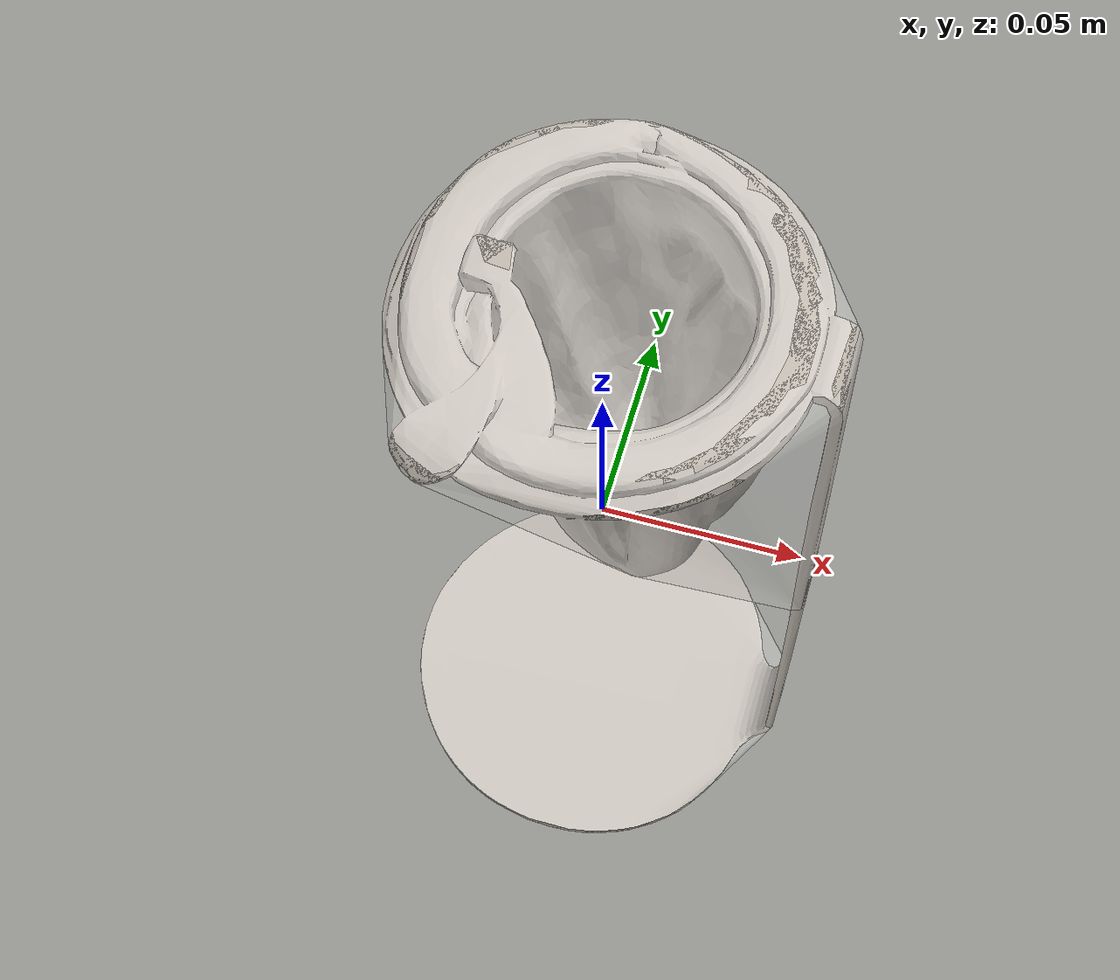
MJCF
<mujoco model="coador">
  <asset>
    <mesh file="visual/modelo.obj" name="coador_vis"/>
    <texture type="2d" name="tex_coador" file="visual/material_0.png"/>
    <material name="mat_coador" texture="tex_coador" specular="0.3" shininess="0.3"/>
    <mesh file="colisao/casco_0.obj" name="coador_col_0"/>
    <mesh file="colisao/casco_1.obj" name="coador_col_1"/>
  </asset>
  <worldbody>
    <body>
      <body name="object">
        <geom type="mesh" mesh="coador_vis" conaffinity="0" contype="0" group="1" material="mat_coador"/>
        <geom class="collision" type="mesh" mesh="coador_col_0"/>
        <geom class="collision" type="mesh" mesh="coador_col_1"/>
      </body>
      <site rgba="0 0 0 0" size="0.005" pos="0 0 -0.09739" name="bottom_site"/>
      <site rgba="0 0 0 0" size="0.005" pos="0 0 0.09739" name="top_site"/>
      <site rgba="0 0 0 0" size="0.005" pos="0.05592 0 0" name="horizontal_radius_site"/>
    </body>
  </worldbody>
  <default>
    <default class="visual">
      <geom group="1" density="100"/>
    </default>
    <default class="collision">
      <geom group="0" mass="0.2000" solimp="0.95 0.98 0.001" solref="0.004 1" rgba="1 1 1 0.25" friction="1.2 0.05 0.002"/>
    </default>
  </default>
</mujoco>
